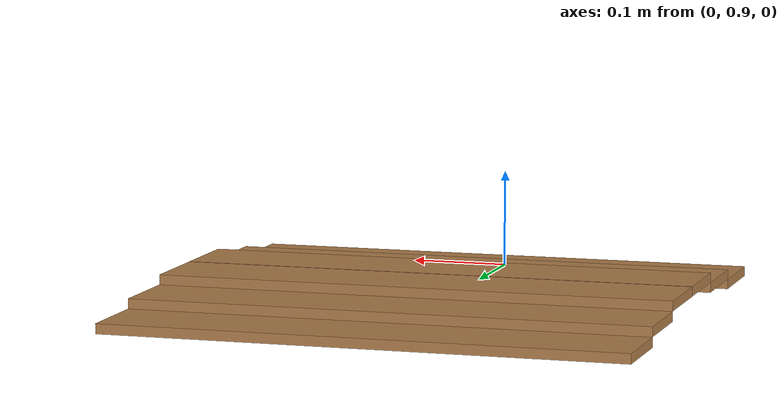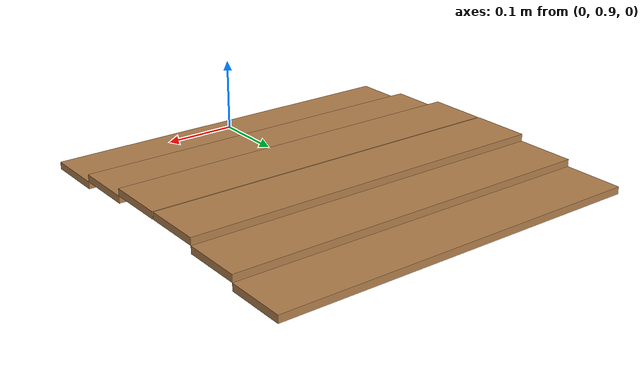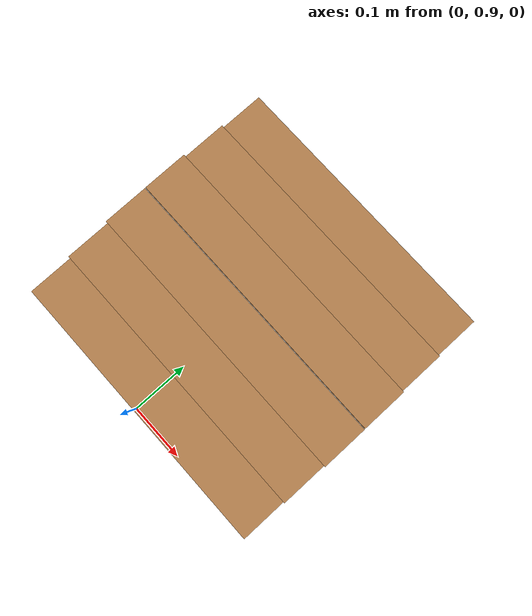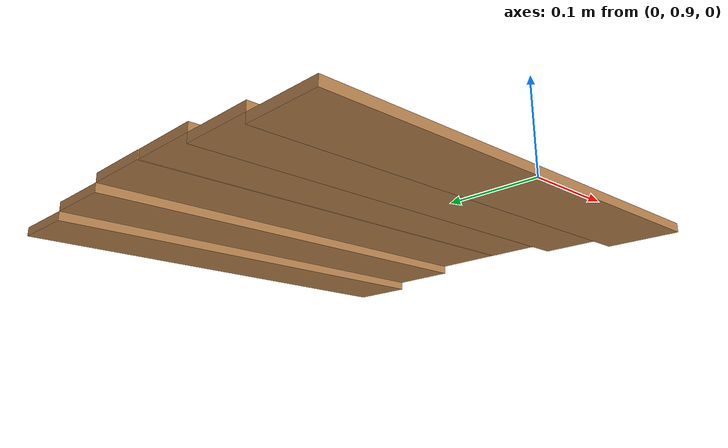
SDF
<?xml version="1.0" encoding="UTF-8"?>
<sdf version="1.4">
  <model name='vc_stair_2'>
    <pose frame=''>0.002242 1.14782 0 0 -0 0</pose>
    <link name='Stairs_1'>
      <visual name='Stairs_1_Visual_0'>
        <pose frame=''>0.000151 -0.209103 0.005 0 -0 -3.14159</pose>
        <geometry>
          <box>
            <size>0.52 0.083333 0.01</size>
          </box>
        </geometry>
        <material>
          <script>
            <uri>model://vc_stair_2/materials/scripts</uri>
            <uri>model://vc_stair_2/materials/textures/</uri>
            <name>Gazebo/WoodFloor</name>
          </script>
          <ambient>0.996078 0.47451 0.0196078 1</ambient>
        </material>
        <meta>
          <layer>0</layer>
        </meta>
      </visual>
      <collision name='Stairs_1_Collision_0'>
        <geometry>
          <box>
            <size>0.52 0.083333 0.01</size>
          </box>
        </geometry>
        <pose frame=''>0.000151 -0.209103 0.005 0 -0 -3.14159</pose>
      </collision>
      <visual name='Stairs_1_Visual_1'>
        <pose frame=''>0.000151 -0.12577 0.015 0 -0 -3.14159</pose>
        <geometry>
          <box>
            <size>0.52 0.083333 0.01</size>
          </box>
        </geometry>
        <material>
          <script>
            <uri>model://vc_stair_2/materials/scripts</uri>
            <uri>model://vc_stair_2/materials/textures/</uri>
            <name>Gazebo/WoodFloor</name>
          </script>
          <ambient>0.996078 0.47451 0.0196078 1</ambient>
        </material>
        <meta>
          <layer>0</layer>
        </meta>
      </visual>
      <collision name='Stairs_1_Collision_1'>
        <geometry>
          <box>
            <size>0.52 0.083333 0.01</size>
          </box>
        </geometry>
        <pose frame=''>0.000151 -0.12577 0.015 0 -0 -3.14159</pose>
      </collision>
      <visual name='Stairs_1_Visual_2'>
        <pose frame=''>0.000151 -0.042437 0.025 0 -0 -3.14159</pose>
        <geometry>
          <box>
            <size>0.52 0.083333 0.01</size>
          </box>
        </geometry>
        <material>
          <script>
            <uri>model://vc_stair_2/materials/scripts</uri>
            <uri>model://vc_stair_2/materials/textures/</uri>
            <name>Gazebo/WoodFloor</name>
          </script>
          <ambient>0.996078 0.47451 0.0196078 1</ambient>
        </material>
        <meta>
          <layer>0</layer>
        </meta>
      </visual>
      <collision name='Stairs_1_Collision_2'>
        <geometry>
          <box>
            <size>0.52 0.083333 0.01</size>
          </box>
        </geometry>
        <pose frame=''>0.000151 -0.042437 0.025 0 -0 -3.14159</pose>
      </collision>
    </link>
    <link name='Stairs_3'>
      <visual name='Stairs_3_Visual_0'>
        <pose frame=''>-0.000151 0.209103 0.005 0 -0 0</pose>
        <geometry>
          <box>
            <size>0.52 0.083333 0.01</size>
          </box>
        </geometry>
        <material>
          <script>
            <uri>model://vc_stair_2/materials/scripts</uri>
            <uri>model://vc_stair_2/materials/textures/</uri>
            <name>Gazebo/WoodFloor</name>
          </script>
          <ambient>0.996078 0.47451 0.0196078 1</ambient>
        </material>
        <meta>
          <layer>0</layer>
        </meta>
      </visual>
      <collision name='Stairs_3_Collision_0'>
        <geometry>
          <box>
            <size>0.52 0.083333 0.01</size>
          </box>
        </geometry>
        <pose frame=''>-0.000151 0.209103 0.005 0 -0 0</pose>
      </collision>
      <visual name='Stairs_3_Visual_1'>
        <pose frame=''>-0.000151 0.12577 0.015 0 -0 0</pose>
        <geometry>
          <box>
            <size>0.52 0.083333 0.01</size>
          </box>
        </geometry>
        <material>
          <script>
            <uri>model://vc_stair_2/materials/scripts</uri>
            <uri>model://vc_stair_2/materials/textures/</uri>
            <name>Gazebo/WoodFloor</name>
          </script>
          <ambient>0.996078 0.47451 0.0196078 1</ambient>
        </material>
        <meta>
          <layer>0</layer>
        </meta>
      </visual>
      <collision name='Stairs_3_Collision_1'>
        <geometry>
          <box>
            <size>0.52 0.083333 0.01</size>
          </box>
        </geometry>
        <pose frame=''>-0.000151 0.12577 0.015 0 -0 0</pose>
      </collision>
      <visual name='Stairs_3_Visual_2'>
        <pose frame=''>-0.000151 0.042437 0.025 0 -0 0</pose>
        <geometry>
          <box>
            <size>0.52 0.083333 0.01</size>
          </box>
        </geometry>
        <material>
          <script>
            <uri>model://vc_stair_2/materials/scripts</uri>
            <uri>model://vc_stair_2/materials/textures/</uri>
            <name>Gazebo/WoodFloor</name>
          </script>
          <ambient>0.996078 0.47451 0.0196078 1</ambient>
        </material>
        <meta>
          <layer>0</layer>
        </meta>
      </visual>
      <collision name='Stairs_3_Collision_2'>
        <geometry>
          <box>
            <size>0.52 0.083333 0.01</size>
          </box>
        </geometry>
        <pose frame=''>-0.000151 0.042437 0.025 0 -0 0</pose>
      </collision>
    </link>
    <static>1</static>
  </model>
</sdf>
